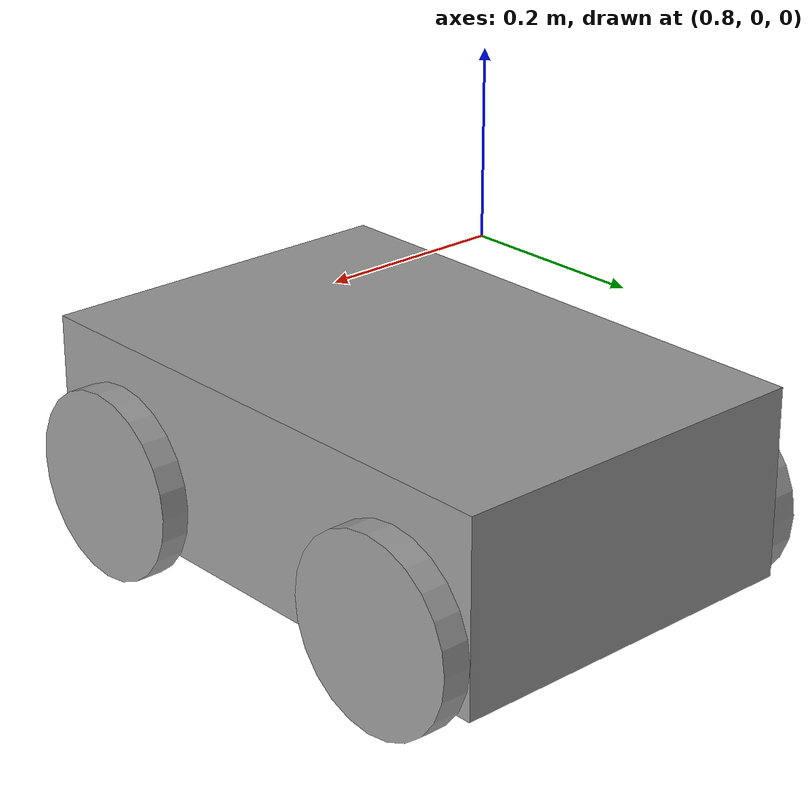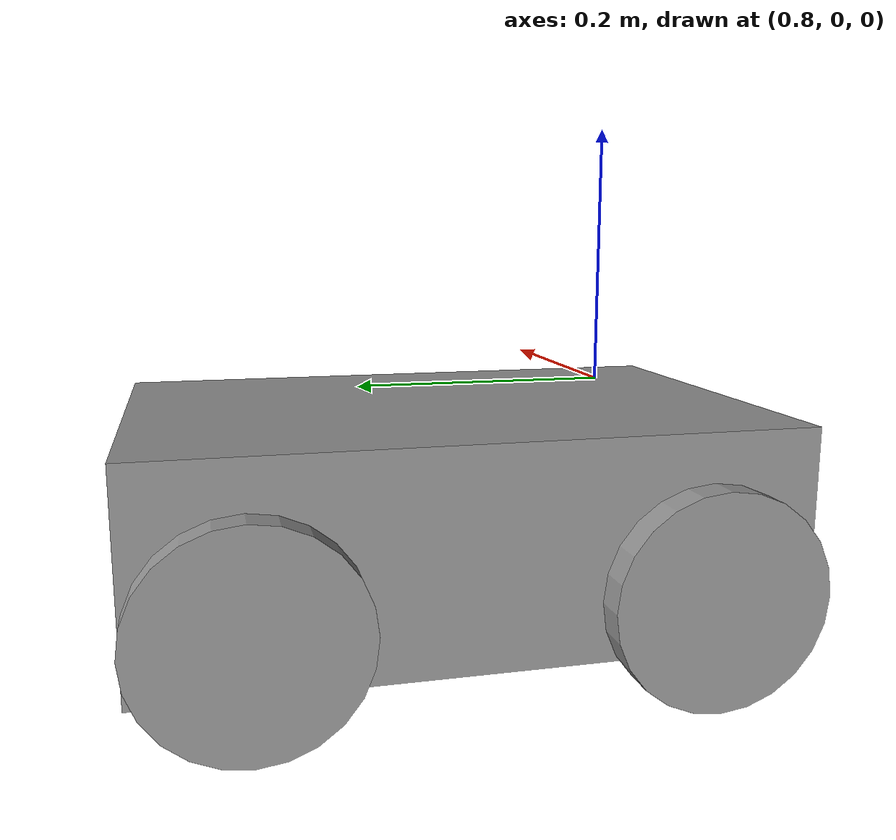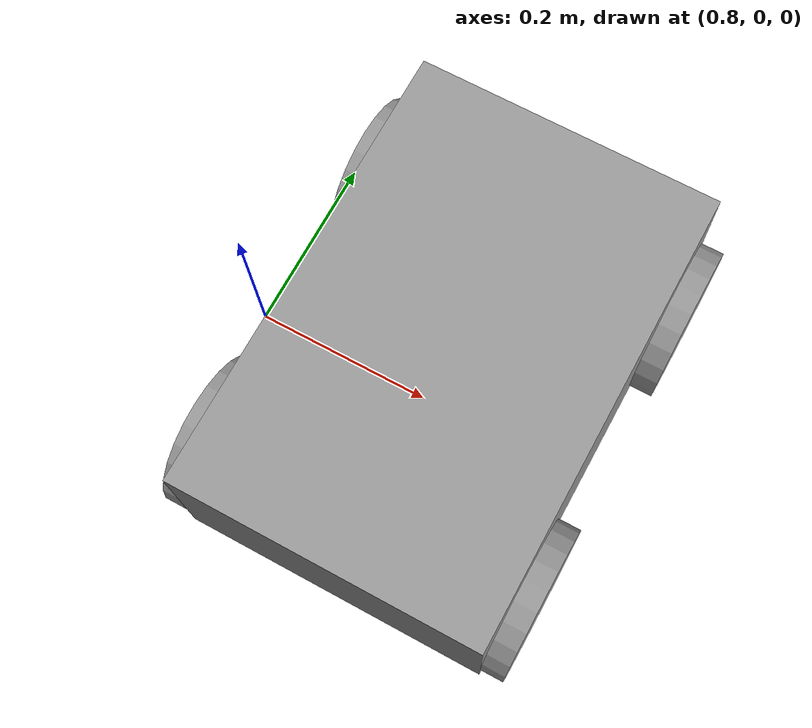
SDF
<?xml version='1.0'?>
<sdf version='1.7'>
  <model name='Project_custom_model_2'>
    <link name='link_0'>
      <inertial>
        <mass>1</mass>
        <inertia>
          <ixx>0.166667</ixx>
          <ixy>0</ixy>
          <ixz>0</ixz>
          <iyy>0.166667</iyy>
          <iyz>0</iyz>
          <izz>0.166667</izz>
        </inertia>
        <pose>0 0 0 0 -0 0</pose>
      </inertial>
      <pose>0.984212 0.092189 -0.148 0 -0 0</pose>
      <gravity>1</gravity>
      <self_collide>0</self_collide>
      <kinematic>0</kinematic>
      <enable_wind>0</enable_wind>
      <visual name='visual'>
        <pose>0 0 0 0 -0 0</pose>
        <geometry>
          <box>
            <size>0.4 0.6 0.2</size>
          </box>
        </geometry>
        <material>
          <lighting>1</lighting>
          <script>
            <uri>file://media/materials/scripts/gazebo.material</uri>
            <name>Gazebo/Grey</name>
          </script>
          <shader type='pixel'>
            <normal_map>__default__</normal_map>
          </shader>
          <ambient>0.827 0.843 0.812 1</ambient>
          <diffuse>0.827 0.843 0.812 1</diffuse>
          <specular>0.827 0.843 0.812 1</specular>
          <emissive>0.333 0.341 0.325 1</emissive>
        </material>
        <transparency>0</transparency>
        <cast_shadows>1</cast_shadows>
      </visual>
      <collision name='collision'>
        <laser_retro>0</laser_retro>
        <max_contacts>10</max_contacts>
        <pose>0 0 0 0 -0 0</pose>
        <geometry>
          <box>
            <size>0.4 0.6 0.2</size>
          </box>
        </geometry>
        <surface>
          <friction>
            <ode>
              <mu>1</mu>
              <mu2>1</mu2>
              <fdir1>0 0 0</fdir1>
              <slip1>0</slip1>
              <slip2>0</slip2>
            </ode>
            <torsional>
              <coefficient>1</coefficient>
              <patch_radius>0</patch_radius>
              <surface_radius>0</surface_radius>
              <use_patch_radius>1</use_patch_radius>
              <ode>
                <slip>0</slip>
              </ode>
            </torsional>
          </friction>
          <bounce>
            <restitution_coefficient>0</restitution_coefficient>
            <threshold>1e+06</threshold>
          </bounce>
          <contact>
            <collide_without_contact>0</collide_without_contact>
            <collide_without_contact_bitmask>1</collide_without_contact_bitmask>
            <collide_bitmask>1</collide_bitmask>
            <ode>
              <soft_cfm>0</soft_cfm>
              <soft_erp>0.2</soft_erp>
              <kp>1e+13</kp>
              <kd>1</kd>
              <max_vel>0.01</max_vel>
              <min_depth>0</min_depth>
            </ode>
            <bullet>
              <split_impulse>1</split_impulse>
              <split_impulse_penetration_threshold>-0.01</split_impulse_penetration_threshold>
              <soft_cfm>0</soft_cfm>
              <soft_erp>0.2</soft_erp>
              <kp>1e+13</kp>
              <kd>1</kd>
            </bullet>
          </contact>
        </surface>
      </collision>
    </link>
    <link name='link_1'>
      <inertial>
        <mass>1</mass>
        <inertia>
          <ixx>0.145833</ixx>
          <ixy>0</ixy>
          <ixz>0</ixz>
          <iyy>0.145833</iyy>
          <iyz>0</iyz>
          <izz>0.125</izz>
        </inertia>
        <pose>0 0 0 0 -0 0</pose>
      </inertial>
      <pose>0.769212 -0.107811 -0.193 1.5708 -0 1.5708</pose>
      <gravity>1</gravity>
      <self_collide>0</self_collide>
      <kinematic>0</kinematic>
      <enable_wind>0</enable_wind>
      <visual name='visual'>
        <pose>0 0 0 0 -0 0</pose>
        <geometry>
          <cylinder>
            <radius>0.1</radius>
            <length>0.03</length>
          </cylinder>
        </geometry>
        <material>
          <lighting>1</lighting>
          <script>
            <uri>file://media/materials/scripts/gazebo.material</uri>
            <name>Gazebo/Grey</name>
          </script>
          <shader type='pixel'>
            <normal_map>__default__</normal_map>
          </shader>
          <ambient>0 0 0 1</ambient>
          <diffuse>0.18 0.204 0.212 1</diffuse>
          <specular>0.18 0.204 0.212 1</specular>
          <emissive>0 0 0 1</emissive>
        </material>
        <transparency>0</transparency>
        <cast_shadows>1</cast_shadows>
      </visual>
      <collision name='collision'>
        <laser_retro>0</laser_retro>
        <max_contacts>10</max_contacts>
        <pose>0 0 0 0 -0 0</pose>
        <geometry>
          <cylinder>
            <radius>0.1</radius>
            <length>0.03</length>
          </cylinder>
        </geometry>
        <surface>
          <friction>
            <ode>
              <mu>1</mu>
              <mu2>1</mu2>
              <fdir1>0 0 0</fdir1>
              <slip1>0</slip1>
              <slip2>0</slip2>
            </ode>
            <torsional>
              <coefficient>1</coefficient>
              <patch_radius>0</patch_radius>
              <surface_radius>0</surface_radius>
              <use_patch_radius>1</use_patch_radius>
              <ode>
                <slip>0</slip>
              </ode>
            </torsional>
          </friction>
          <bounce>
            <restitution_coefficient>0</restitution_coefficient>
            <threshold>1e+06</threshold>
          </bounce>
          <contact>
            <collide_without_contact>0</collide_without_contact>
            <collide_without_contact_bitmask>1</collide_without_contact_bitmask>
            <collide_bitmask>1</collide_bitmask>
            <ode>
              <soft_cfm>0</soft_cfm>
              <soft_erp>0.2</soft_erp>
              <kp>1e+13</kp>
              <kd>1</kd>
              <max_vel>0.01</max_vel>
              <min_depth>0</min_depth>
            </ode>
            <bullet>
              <split_impulse>1</split_impulse>
              <split_impulse_penetration_threshold>-0.01</split_impulse_penetration_threshold>
              <soft_cfm>0</soft_cfm>
              <soft_erp>0.2</soft_erp>
              <kp>1e+13</kp>
              <kd>1</kd>
            </bullet>
          </contact>
        </surface>
      </collision>
    </link>
    <link name='link_1_clone'>
      <inertial>
        <mass>1</mass>
        <inertia>
          <ixx>0.145833</ixx>
          <ixy>0</ixy>
          <ixz>0</ixz>
          <iyy>0.145833</iyy>
          <iyz>0</iyz>
          <izz>0.125</izz>
        </inertia>
        <pose>0 0 0 0 -0 0</pose>
      </inertial>
      <pose>1.19921 -0.107811 -0.193 1.5708 -0 1.5708</pose>
      <gravity>1</gravity>
      <self_collide>0</self_collide>
      <kinematic>0</kinematic>
      <enable_wind>0</enable_wind>
      <visual name='visual'>
        <pose>0 0 0 0 -0 0</pose>
        <geometry>
          <cylinder>
            <radius>0.1</radius>
            <length>0.03</length>
          </cylinder>
        </geometry>
        <material>
          <lighting>1</lighting>
          <script>
            <uri>file://media/materials/scripts/gazebo.material</uri>
            <name>Gazebo/Grey</name>
          </script>
          <shader type='pixel'>
            <normal_map>__default__</normal_map>
          </shader>
          <ambient>0 0 0 1</ambient>
          <diffuse>0 0 0 1</diffuse>
          <specular>0.01 0.01 0.01 1</specular>
          <emissive>0 0 0 1</emissive>
        </material>
        <transparency>0</transparency>
        <cast_shadows>1</cast_shadows>
      </visual>
      <collision name='collision'>
        <laser_retro>0</laser_retro>
        <max_contacts>10</max_contacts>
        <pose>0 0 0 0 -0 0</pose>
        <geometry>
          <cylinder>
            <radius>0.1</radius>
            <length>0.03</length>
          </cylinder>
        </geometry>
        <surface>
          <friction>
            <ode>
              <mu>1</mu>
              <mu2>1</mu2>
              <fdir1>0 0 0</fdir1>
              <slip1>0</slip1>
              <slip2>0</slip2>
            </ode>
            <torsional>
              <coefficient>1</coefficient>
              <patch_radius>0</patch_radius>
              <surface_radius>0</surface_radius>
              <use_patch_radius>1</use_patch_radius>
              <ode>
                <slip>0</slip>
              </ode>
            </torsional>
          </friction>
          <bounce>
            <restitution_coefficient>0</restitution_coefficient>
            <threshold>1e+06</threshold>
          </bounce>
          <contact>
            <collide_without_contact>0</collide_without_contact>
            <collide_without_contact_bitmask>1</collide_without_contact_bitmask>
            <collide_bitmask>1</collide_bitmask>
            <ode>
              <soft_cfm>0</soft_cfm>
              <soft_erp>0.2</soft_erp>
              <kp>1e+13</kp>
              <kd>1</kd>
              <max_vel>0.01</max_vel>
              <min_depth>0</min_depth>
            </ode>
            <bullet>
              <split_impulse>1</split_impulse>
              <split_impulse_penetration_threshold>-0.01</split_impulse_penetration_threshold>
              <soft_cfm>0</soft_cfm>
              <soft_erp>0.2</soft_erp>
              <kp>1e+13</kp>
              <kd>1</kd>
            </bullet>
          </contact>
        </surface>
      </collision>
    </link>
    <link name='link_1_clone_0'>
      <inertial>
        <mass>1</mass>
        <inertia>
          <ixx>0.145833</ixx>
          <ixy>0</ixy>
          <ixz>0</ixz>
          <iyy>0.145833</iyy>
          <iyz>0</iyz>
          <izz>0.125</izz>
        </inertia>
        <pose>0 0 0 0 -0 0</pose>
      </inertial>
      <pose>1.19921 0.292189 -0.193 1.5708 -0 1.5708</pose>
      <gravity>1</gravity>
      <self_collide>0</self_collide>
      <kinematic>0</kinematic>
      <enable_wind>0</enable_wind>
      <visual name='visual'>
        <pose>0 0 0 0 -0 0</pose>
        <geometry>
          <cylinder>
            <radius>0.1</radius>
            <length>0.03</length>
          </cylinder>
        </geometry>
        <material>
          <lighting>1</lighting>
          <script>
            <uri>file://media/materials/scripts/gazebo.material</uri>
            <name>Gazebo/Grey</name>
          </script>
          <shader type='pixel'>
            <normal_map>__default__</normal_map>
          </shader>
          <ambient>0.3 0.3 0.3 1</ambient>
          <diffuse>0 0 0 1</diffuse>
          <specular>0.18 0.204 0.212 1</specular>
          <emissive>0 0 0 1</emissive>
        </material>
        <transparency>0</transparency>
        <cast_shadows>1</cast_shadows>
      </visual>
      <collision name='collision'>
        <laser_retro>0</laser_retro>
        <max_contacts>10</max_contacts>
        <pose>0 0 0 0 -0 0</pose>
        <geometry>
          <cylinder>
            <radius>0.1</radius>
            <length>0.03</length>
          </cylinder>
        </geometry>
        <surface>
          <friction>
            <ode>
              <mu>1</mu>
              <mu2>1</mu2>
              <fdir1>0 0 0</fdir1>
              <slip1>0</slip1>
              <slip2>0</slip2>
            </ode>
            <torsional>
              <coefficient>1</coefficient>
              <patch_radius>0</patch_radius>
              <surface_radius>0</surface_radius>
              <use_patch_radius>1</use_patch_radius>
              <ode>
                <slip>0</slip>
              </ode>
            </torsional>
          </friction>
          <bounce>
            <restitution_coefficient>0</restitution_coefficient>
            <threshold>1e+06</threshold>
          </bounce>
          <contact>
            <collide_without_contact>0</collide_without_contact>
            <collide_without_contact_bitmask>1</collide_without_contact_bitmask>
            <collide_bitmask>1</collide_bitmask>
            <ode>
              <soft_cfm>0</soft_cfm>
              <soft_erp>0.2</soft_erp>
              <kp>1e+13</kp>
              <kd>1</kd>
              <max_vel>0.01</max_vel>
              <min_depth>0</min_depth>
            </ode>
            <bullet>
              <split_impulse>1</split_impulse>
              <split_impulse_penetration_threshold>-0.01</split_impulse_penetration_threshold>
              <soft_cfm>0</soft_cfm>
              <soft_erp>0.2</soft_erp>
              <kp>1e+13</kp>
              <kd>1</kd>
            </bullet>
          </contact>
        </surface>
      </collision>
    </link>
    <link name='link_1_clone_1'>
      <inertial>
        <mass>1</mass>
        <inertia>
          <ixx>0.145833</ixx>
          <ixy>0</ixy>
          <ixz>0</ixz>
          <iyy>0.145833</iyy>
          <iyz>0</iyz>
          <izz>0.125</izz>
        </inertia>
        <pose>0 0 0 0 -0 0</pose>
      </inertial>
      <pose>0.769212 0.292189 -0.193 1.5708 -0 1.5708</pose>
      <gravity>1</gravity>
      <self_collide>0</self_collide>
      <kinematic>0</kinematic>
      <enable_wind>0</enable_wind>
      <visual name='visual'>
        <pose>0 0 0 0 -0 0</pose>
        <geometry>
          <cylinder>
            <radius>0.1</radius>
            <length>0.03</length>
          </cylinder>
        </geometry>
        <material>
          <lighting>1</lighting>
          <script>
            <uri>file://media/materials/scripts/gazebo.material</uri>
            <name>Gazebo/Grey</name>
          </script>
          <shader type='pixel'>
            <normal_map>__default__</normal_map>
          </shader>
          <ambient>0 0 0 1</ambient>
          <diffuse>0.18 0.204 0.212 1</diffuse>
          <specular>0.18 0.204 0.212 1</specular>
          <emissive>0 0 0 1</emissive>
        </material>
        <transparency>0</transparency>
        <cast_shadows>1</cast_shadows>
      </visual>
      <collision name='collision'>
        <laser_retro>0</laser_retro>
        <max_contacts>10</max_contacts>
        <pose>0 0 0 0 -0 0</pose>
        <geometry>
          <cylinder>
            <radius>0.1</radius>
            <length>0.03</length>
          </cylinder>
        </geometry>
        <surface>
          <friction>
            <ode>
              <mu>1</mu>
              <mu2>1</mu2>
              <fdir1>0 0 0</fdir1>
              <slip1>0</slip1>
              <slip2>0</slip2>
            </ode>
            <torsional>
              <coefficient>1</coefficient>
              <patch_radius>0</patch_radius>
              <surface_radius>0</surface_radius>
              <use_patch_radius>1</use_patch_radius>
              <ode>
                <slip>0</slip>
              </ode>
            </torsional>
          </friction>
          <bounce>
            <restitution_coefficient>0</restitution_coefficient>
            <threshold>1e+06</threshold>
          </bounce>
          <contact>
            <collide_without_contact>0</collide_without_contact>
            <collide_without_contact_bitmask>1</collide_without_contact_bitmask>
            <collide_bitmask>1</collide_bitmask>
            <ode>
              <soft_cfm>0</soft_cfm>
              <soft_erp>0.2</soft_erp>
              <kp>1e+13</kp>
              <kd>1</kd>
              <max_vel>0.01</max_vel>
              <min_depth>0</min_depth>
            </ode>
            <bullet>
              <split_impulse>1</split_impulse>
              <split_impulse_penetration_threshold>-0.01</split_impulse_penetration_threshold>
              <soft_cfm>0</soft_cfm>
              <soft_erp>0.2</soft_erp>
              <kp>1e+13</kp>
              <kd>1</kd>
            </bullet>
          </contact>
        </surface>
      </collision>
    </link>
    <joint name='Wheel_joint_rev_1' type='revolute'>
      <parent>link_0</parent>
      <child>link_1</child>
      <pose>0 0 0 0 -0 0</pose>
      <axis>
        <xyz>0 0 1</xyz>
        <limit>
          <lower>-1.79769e+308</lower>
          <upper>1.79769e+308</upper>
          <effort>-1</effort>
          <velocity>-1</velocity>
        </limit>
        <dynamics>
          <spring_reference>0</spring_reference>
          <spring_stiffness>0</spring_stiffness>
          <damping>0</damping>
          <friction>0</friction>
        </dynamics>
      </axis>
      <physics>
        <ode>
          <limit>
            <cfm>0</cfm>
            <erp>0.2</erp>
          </limit>
          <suspension>
            <cfm>0</cfm>
            <erp>0.2</erp>
          </suspension>
        </ode>
      </physics>
    </joint>
    <joint name='Wheel_joint_rev_2' type='revolute'>
      <parent>link_0</parent>
      <child>link_1_clone_1</child>
      <pose>0 0 0 0 -0 0</pose>
      <axis>
        <xyz>0 0 1</xyz>
        <limit>
          <lower>-1.79769e+308</lower>
          <upper>1.79769e+308</upper>
          <effort>-1</effort>
          <velocity>-1</velocity>
        </limit>
        <dynamics>
          <spring_reference>0</spring_reference>
          <spring_stiffness>0</spring_stiffness>
          <damping>0</damping>
          <friction>0</friction>
        </dynamics>
      </axis>
      <physics>
        <ode>
          <limit>
            <cfm>0</cfm>
            <erp>0.2</erp>
          </limit>
          <suspension>
            <cfm>0</cfm>
            <erp>0.2</erp>
          </suspension>
        </ode>
      </physics>
    </joint>
    <joint name='Wheel_joint_rev_3' type='revolute'>
      <parent>link_0</parent>
      <child>link_1_clone_0</child>
      <pose>0 0 0 0 -0 0</pose>
      <axis>
        <xyz>0 0 1</xyz>
        <limit>
          <lower>-1.79769e+308</lower>
          <upper>1.79769e+308</upper>
          <effort>-1</effort>
          <velocity>-1</velocity>
        </limit>
        <dynamics>
          <spring_reference>0</spring_reference>
          <spring_stiffness>0</spring_stiffness>
          <damping>0</damping>
          <friction>0</friction>
        </dynamics>
      </axis>
      <physics>
        <ode>
          <limit>
            <cfm>0</cfm>
            <erp>0.2</erp>
          </limit>
          <suspension>
            <cfm>0</cfm>
            <erp>0.2</erp>
          </suspension>
        </ode>
      </physics>
    </joint>
    <joint name='Wheel_joint_rev_4' type='revolute'>
      <parent>link_0</parent>
      <child>link_1_clone</child>
      <pose>0 0 0 0 -0 0</pose>
      <axis>
        <xyz>0 0 1</xyz>
        <limit>
          <lower>-1.79769e+308</lower>
          <upper>1.79769e+308</upper>
          <effort>-1</effort>
          <velocity>-1</velocity>
        </limit>
        <dynamics>
          <spring_reference>0</spring_reference>
          <spring_stiffness>0</spring_stiffness>
          <damping>0</damping>
          <friction>0</friction>
        </dynamics>
      </axis>
      <physics>
        <ode>
          <limit>
            <cfm>0</cfm>
            <erp>0.2</erp>
          </limit>
          <suspension>
            <cfm>0</cfm>
            <erp>0.2</erp>
          </suspension>
        </ode>
      </physics>
    </joint>
    <static>0</static>
    <allow_auto_disable>1</allow_auto_disable>
  </model>
</sdf>
